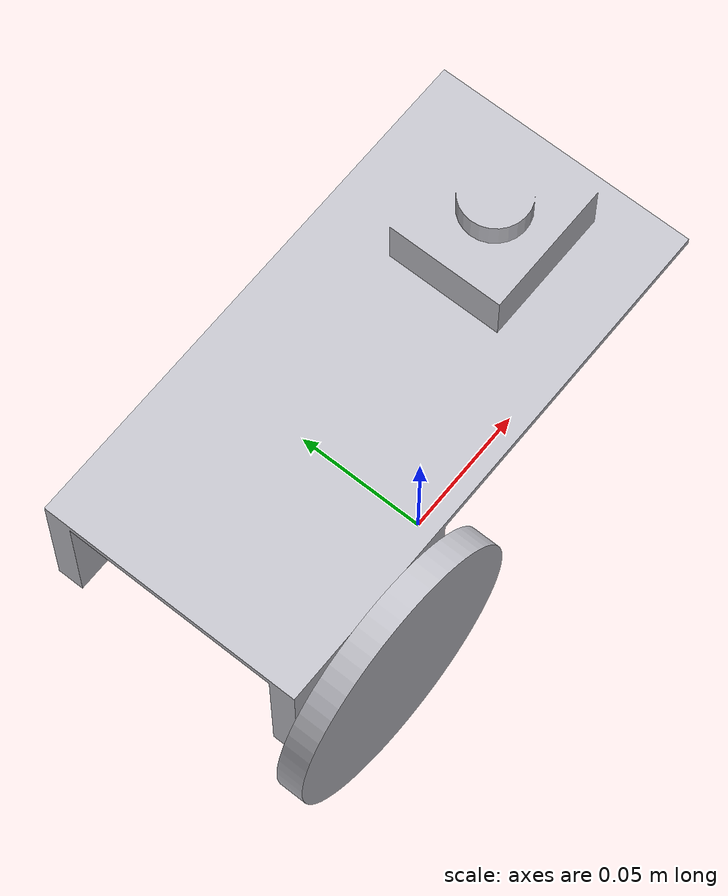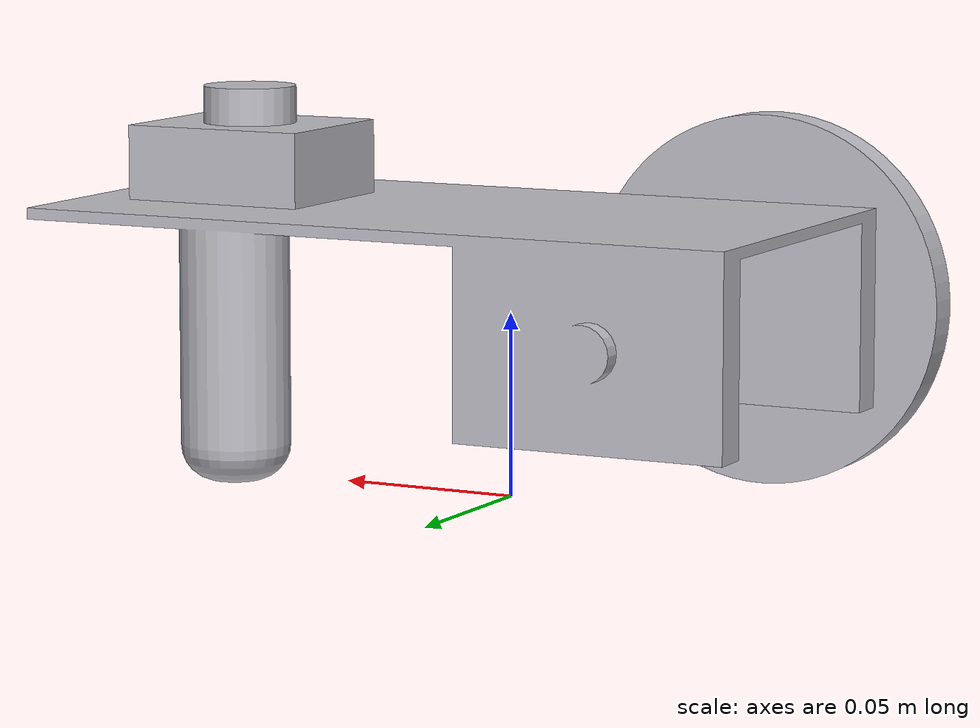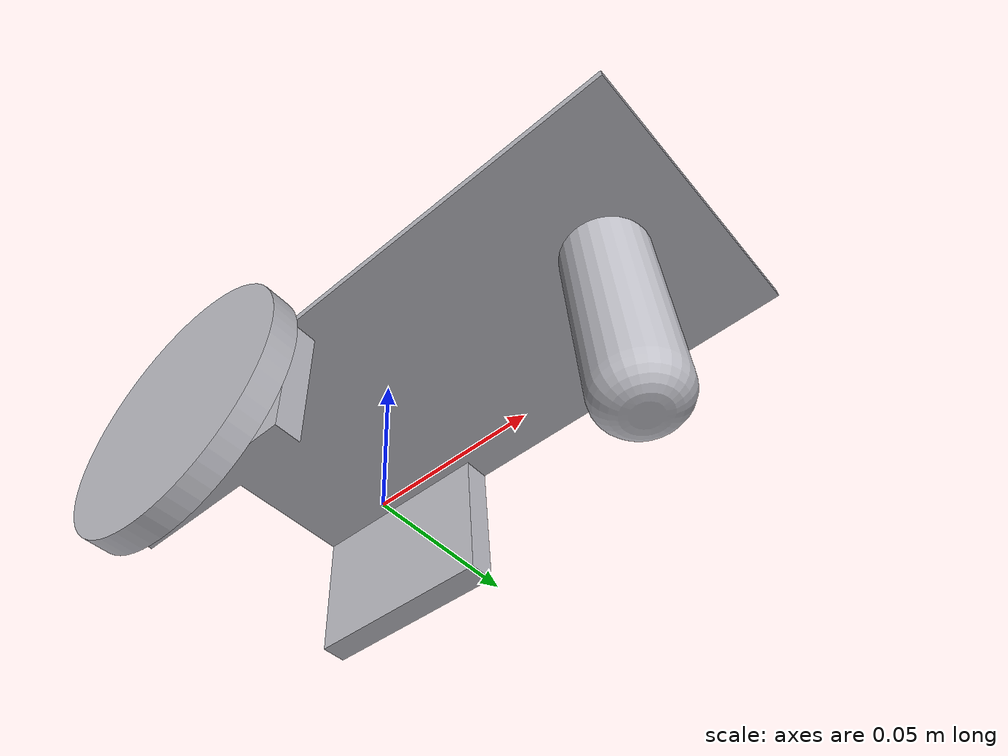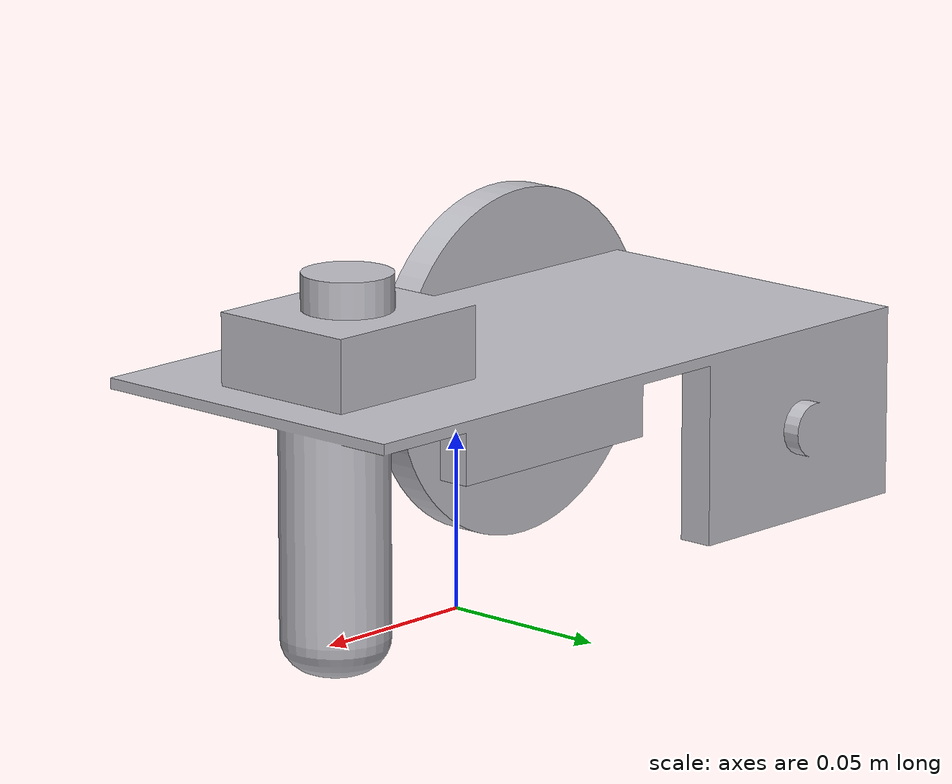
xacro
<?xml version="1.0" ?>
<robot name="day" xmlns:xacro="http://www.ros.org/wiki/xacro">

<xacro:include filename="$(find day_description)/urdf/materials.xacro" />
<xacro:include filename="$(find day_description)/urdf/day.trans" />
<xacro:include filename="$(find day_description)/urdf/day.gazebo" />
<link name="base_link">
  <inertial>
    <origin xyz="0.012356924644014744 0.023974125180550133 0.06527940089904383" rpy="0 0 0"/>
    <mass value="1.8559945700042284"/>
    <inertia ixx="0.002707" iyy="0.008434" izz="0.009109" ixy="2e-05" iyz="0.0" ixz="-0.000469"/>
  </inertial>
  <visual>
    <origin xyz="0 0 0" rpy="0 0 0"/>
    <geometry>
      <mesh filename="package://day_description/meshes/base_link.stl" scale="0.001 0.001 0.001"/>
    </geometry>
    <material name="silver"/>
  </visual>
  <collision>
    <origin xyz="0 0 0" rpy="0 0 0"/>
    <geometry>
      <mesh filename="package://day_description/meshes/base_link.stl" scale="0.001 0.001 0.001"/>
    </geometry>
  </collision>
</link>

<link name="right_wheel_1">
  <inertial>
    <origin xyz="1.2941269397770405e-07 -0.004999869602362719 3.9881331084790084e-08" rpy="0 0 0"/>
    <mass value="0.6165375582669967"/>
    <inertia ixx="0.00039" iyy="0.000771" izz="0.00039" ixy="0.0" iyz="0.0" ixz="0.0"/>
  </inertial>
  <visual>
    <origin xyz="0.060043 0.030819 -0.05358" rpy="0 0 0"/>
    <geometry>
      <mesh filename="package://day_description/meshes/right_wheel_1.stl" scale="0.001 0.001 0.001"/>
    </geometry>
    <material name="silver"/>
  </visual>
  <collision>
    <origin xyz="0.060043 0.030819 -0.05358" rpy="0 0 0"/>
    <geometry>
      <mesh filename="package://day_description/meshes/right_wheel_1.stl" scale="0.001 0.001 0.001"/>
    </geometry>
  </collision>
</link>

<joint name="Rev2" type="continuous">
  <origin xyz="-0.060043 -0.030819 0.05358" rpy="0 0 0"/>
  <parent link="base_link"/>
  <child link="right_wheel_1"/>
  <axis xyz="0.0 -1.0 -0.0"/>
</joint>

</robot>

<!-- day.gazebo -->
<robot name="day" xmlns:xacro="http://www.ros.org/wiki/xacro" >

<xacro:property name="body_color" value="Gazebo/Silver" />

<gazebo>
  <plugin name="control" filename="libgazebo_ros_control.so"/>
</gazebo>
<gazebo reference="base_link">
  <material>${body_color}</material>
  <mu1>0.2</mu1>
  <mu2>0.2</mu2>
  <selfCollide>true</selfCollide>
  <gravity>true</gravity>
</gazebo>

<gazebo reference="right_wheel_1">
  <material>${body_color}</material>
  <mu1>0.2</mu1>
  <mu2>0.2</mu2>
  <selfCollide>true</selfCollide>
</gazebo>

</robot>
